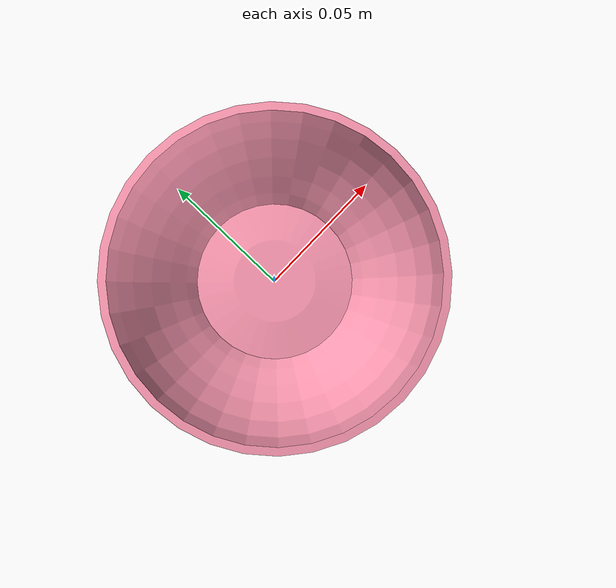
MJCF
<mujoco model="bowl">
  <asset>
    <mesh file="meshes/bowl.stl" name="bowl_mesh" scale="0.0004 0.0004 0.0004"/>
    <!-- Convex wall segment: original 6/13/22 mm half-extents, 2 mm edge bevel.
         Each vertex retains one full extent and insets the other two by 2 mm. -->
    <mesh name="bowl_wall_bevel_2mm" vertex="
      -0.006 -0.011 -0.020
      -0.006 -0.011 0.020
      -0.006 0.011 -0.020
      -0.006 0.011 0.020
      0.006 -0.011 -0.020
      0.006 -0.011 0.020
      0.006 0.011 -0.020
      0.006 0.011 0.020
      -0.004 -0.013 -0.020
      -0.004 -0.013 0.020
      -0.004 0.013 -0.020
      -0.004 0.013 0.020
      0.004 -0.013 -0.020
      0.004 -0.013 0.020
      0.004 0.013 -0.020
      0.004 0.013 0.020
      -0.004 -0.011 -0.022
      -0.004 -0.011 0.022
      -0.004 0.011 -0.022
      -0.004 0.011 0.022
      0.004 -0.011 -0.022
      0.004 -0.011 0.022
      0.004 0.011 -0.022
      0.004 0.011 0.022"/>
    <material name="bowl_mat" rgba="1.0 0.6 0.7 1.0" specular="0.3" shininess="0.4"/>
  </asset>
  <worldbody>
    <body>
      <body name="object">
        <!-- Preserve the original box-wall bowl mass and inertia. -->
        <inertial mass="0.18534798940020264" pos="0 0 0.01988706745688916" quat="-0.03077009816853926 0.6868510070214288 0.033398018331998736 0.725378154884642" diaginertia="0.0003565070769552238 0.00020901652533358376 0.00020528750130637422"/>

        <!-- Visual mesh only — convex hull disabled for collision -->
        <geom mesh="bowl_mesh" type="mesh" material="bowl_mat" group="1"
              contype="0" conaffinity="0"/>

        <!-- Collision: floor disk (covers inner base, r≈0.027 m) -->
        <geom type="cylinder" size="0.027 0.003" pos="0 0 0.003"
              solimp="0.998 0.998 0.001" solref="0.001 1" density="1500"
              friction="2.8 0.3 0.1" group="0" condim="4" rgba="0 0 0 0"/>

        <geom type="mesh" mesh="bowl_wall_bevel_2mm" pos=" 0.0450  0.0000 0.022" euler="0 35   0"
              solimp="0.998 0.998 0.001" solref="0.001 1" density="1500"
              friction="2.8 0.3 0.1" group="0" condim="4" rgba="0 0 0 0"/>
        <geom type="mesh" mesh="bowl_wall_bevel_2mm" pos=" 0.0318  0.0318 0.022" euler="0 35  45"
              solimp="0.998 0.998 0.001" solref="0.001 1" density="1500"
              friction="2.8 0.3 0.1" group="0" condim="4" rgba="0 0 0 0"/>
        <geom type="mesh" mesh="bowl_wall_bevel_2mm" pos=" 0.0000  0.0450 0.022" euler="0 35  90"
              solimp="0.998 0.998 0.001" solref="0.001 1" density="1500"
              friction="2.8 0.3 0.1" group="0" condim="4" rgba="0 0 0 0"/>
        <geom type="mesh" mesh="bowl_wall_bevel_2mm" pos="-0.0318  0.0318 0.022" euler="0 35 135"
              solimp="0.998 0.998 0.001" solref="0.001 1" density="1500"
              friction="2.8 0.3 0.1" group="0" condim="4" rgba="0 0 0 0"/>
        <geom type="mesh" mesh="bowl_wall_bevel_2mm" pos="-0.0450  0.0000 0.022" euler="0 35 180"
              solimp="0.998 0.998 0.001" solref="0.001 1" density="1500"
              friction="2.8 0.3 0.1" group="0" condim="4" rgba="0 0 0 0"/>
        <geom type="mesh" mesh="bowl_wall_bevel_2mm" pos="-0.0318 -0.0318 0.022" euler="0 35 225"
              solimp="0.998 0.998 0.001" solref="0.001 1" density="1500"
              friction="2.8 0.3 0.1" group="0" condim="4" rgba="0 0 0 0"/>
        <geom type="mesh" mesh="bowl_wall_bevel_2mm" pos=" 0.0000 -0.0450 0.022" euler="0 35 270"
              solimp="0.998 0.998 0.001" solref="0.001 1" density="1500"
              friction="2.8 0.3 0.1" group="0" condim="4" rgba="0 0 0 0"/>
        <geom type="mesh" mesh="bowl_wall_bevel_2mm" pos=" 0.0318 -0.0318 0.022" euler="0 35 315"
              solimp="0.998 0.998 0.001" solref="0.001 1" density="1500"
              friction="2.8 0.3 0.1" group="0" condim="4" rgba="0 0 0 0"/>

      </body>
      <site rgba="0 0 0 0" size="0.005" pos="0 0 0"     name="bottom_site"/>
      <site rgba="0 0 0 0" size="0.005" pos="0 0 0.044" name="top_site"/>
      <site rgba="0 0 0 0" size="0.005" pos="0.055 0 0" name="horizontal_radius_site"/>
    </body>
  </worldbody>
</mujoco>
